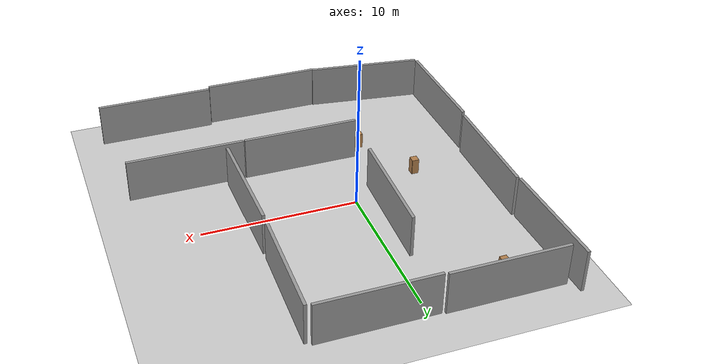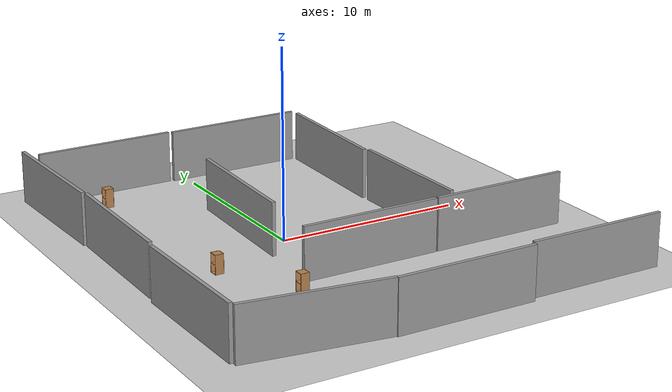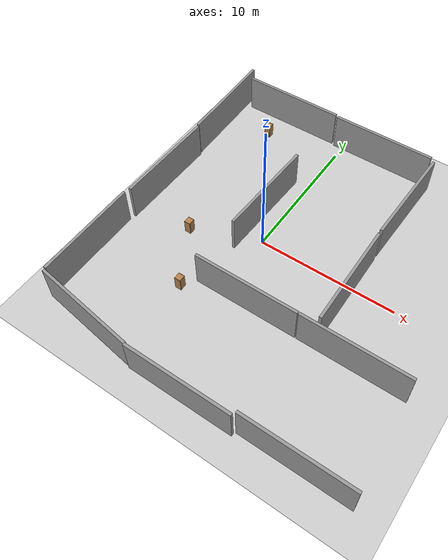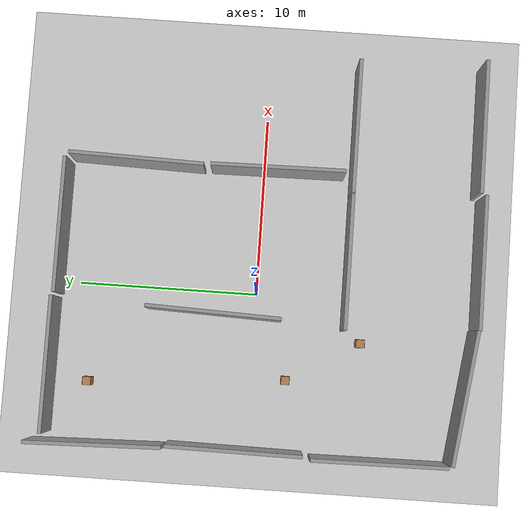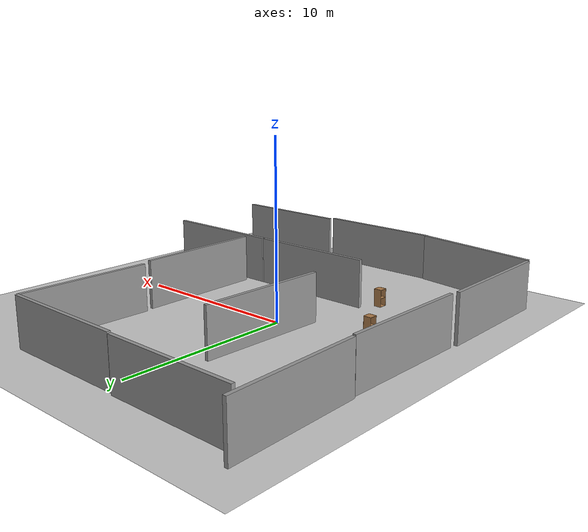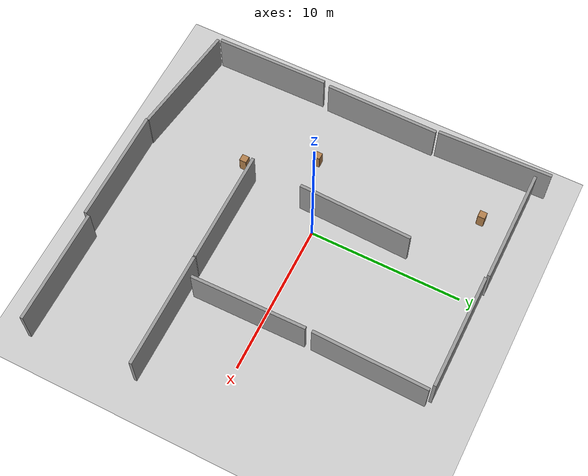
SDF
<sdf version="1.4">
 <world name="default">
  <light name="sun" type="directional">
   <pose>0 0 10 0 -0 0</pose>
   <diffuse>0.8 0.8 0.8 1</diffuse>
   <specular>0.2 0.2 0.2 1</specular>
   <attenuation>
    <range>1000</range>
    <constant>0.9</constant>
    <linear>0.01</linear>
    <quadratic>0.001</quadratic>
   </attenuation>
   <direction>-0.5 0.1 -0.9</direction>
  </light>
  <model name="ground_plane">
   <static>1</static>
   <link name="link">
    <collision name="collision">
     <geometry><plane><normal>0 0 1</normal><size>100 100</size></plane></geometry>
     <surface><friction><ode><mu>100</mu><mu2>50</mu2></ode></friction></surface>
    </collision>
    <visual name="visual">
     <cast_shadows>0</cast_shadows>
     <geometry><plane><normal>0 0 1</normal><size>100 100</size></plane></geometry>
     <material>
      <script><uri>file://media/materials/scripts/gazebo.material</uri><name>Gazebo/Grey</name></script>
     </material>
    </visual>
    <velocity_decay><linear>0</linear><angular>0</angular></velocity_decay>
   </link>
  </model>
  <physics type="ode">
   <max_step_size>0.001</max_step_size>
   <real_time_factor>1</real_time_factor>
   <real_time_update_rate>1000</real_time_update_rate>
   <gravity>0 0 -0.8</gravity>
  </physics>
  <scene><ambient>0.4 0.4 0.4 1</ambient><background>0.7 0.7 0.7 1</background><shadows>1</shadows></scene>
  <spherical_coordinates>
   <surface_model>EARTH_WGS84</surface_model>
   <latitude_deg>0</latitude_deg>
   <longitude_deg>0</longitude_deg>
   <elevation>0</elevation>
   <heading_deg>0</heading_deg>
  </spherical_coordinates>
  <model name="grey_wall">
   <static>1</static>
   <link name="link">
    <pose>0 0 1.4 0 -0 0</pose>
    <collision name="collision"><geometry><box><size>7.5 0.2 2.8</size></box></geometry></collision>
    <visual name="visual">
     <cast_shadows>0</cast_shadows>
     <geometry><box><size>7.5 0.2 2.8</size></box></geometry>
     <material>
      <script>
       <uri>model://grey_wall/materials/scripts</uri>
       <uri>model://grey_wall/materials/textures</uri>
       <name>vrc/grey_wall</name>
      </script>
     </material>
    </visual>
    <velocity_decay><linear>0</linear><angular>0</angular></velocity_decay>
   </link>
   <pose>-4.66921 11.1323 0 0 -0 0</pose>
  </model>
  <model name="grey_wall_0">
   <static>1</static>
   <link name="link">
    <pose>0 0 1.4 0 -0 0</pose>
    <collision name="collision"><geometry><box><size>7.5 0.2 2.8</size></box></geometry></collision>
    <visual name="visual">
     <cast_shadows>0</cast_shadows>
     <geometry><box><size>7.5 0.2 2.8</size></box></geometry>
     <material>
      <script>
       <uri>model://grey_wall/materials/scripts</uri>
       <uri>model://grey_wall/materials/textures</uri>
       <name>vrc/grey_wall</name>
      </script>
     </material>
    </visual>
    <velocity_decay><linear>0</linear><angular>0</angular></velocity_decay>
   </link>
   <pose>-8.82305 8.28524 0 0 -0 1.59678</pose>
  </model>
  <model name="grey_wall_1">
   <static>1</static>
   <link name="link">
    <pose>0 0 1.4 0 -0 0</pose>
    <collision name="collision"><geometry><box><size>7.5 0.2 2.8</size></box></geometry></collision>
    <visual name="visual">
     <cast_shadows>0</cast_shadows>
     <geometry><box><size>7.5 0.2 2.8</size></box></geometry>
     <material>
      <script>
       <uri>model://grey_wall/materials/scripts</uri>
       <uri>model://grey_wall/materials/textures</uri>
       <name>vrc/grey_wall</name>
      </script>
     </material>
    </visual>
    <velocity_decay><linear>0</linear><angular>0</angular></velocity_decay>
   </link>
   <pose>6.95709 7.1151 -0.09958 0 0 -1.59597</pose>
  </model>
  <model name="grey_wall_2">
   <static>1</static>
   <link name="link">
    <pose>0 0 1.4 0 -0 0</pose>
    <collision name="collision"><geometry><box><size>7.5 0.2 2.8</size></box></geometry></collision>
    <visual name="visual">
     <cast_shadows>0</cast_shadows>
     <geometry><box><size>7.5 0.2 2.8</size></box></geometry>
     <material>
      <script>
       <uri>model://grey_wall/materials/scripts</uri>
       <uri>model://grey_wall/materials/textures</uri>
       <name>vrc/grey_wall</name>
      </script>
     </material>
    </visual>
    <velocity_decay><linear>0</linear><angular>0</angular></velocity_decay>
   </link>
   <pose>-8.66798 0.643351 0 0 -0 1.55971</pose>
  </model>
  <model name="grey_wall_3">
   <static>1</static>
   <link name="link">
    <pose>0 0 1.4 0 -0 0</pose>
    <collision name="collision"><geometry><box><size>7.5 0.2 2.8</size></box></geometry></collision>
    <visual name="visual">
     <cast_shadows>0</cast_shadows>
     <geometry><box><size>7.5 0.2 2.8</size></box></geometry>
     <material>
      <script>
       <uri>model://grey_wall/materials/scripts</uri>
       <uri>model://grey_wall/materials/textures</uri>
       <name>vrc/grey_wall</name>
      </script>
     </material>
    </visual>
    <velocity_decay><linear>0</linear><angular>0</angular></velocity_decay>
   </link>
   <pose>3.0187 11.024 0 0 -0 0</pose>
  </model>
  <model name="grey_wall_4">
   <static>1</static>
   <link name="link">
    <pose>0 0 1.4 0 -0 0</pose>
    <collision name="collision"><geometry><box><size>7.5 0.2 2.8</size></box></geometry></collision>
    <visual name="visual">
     <cast_shadows>0</cast_shadows>
     <geometry><box><size>7.5 0.2 2.8</size></box></geometry>
     <material>
      <script>
       <uri>model://grey_wall/materials/scripts</uri>
       <uri>model://grey_wall/materials/textures</uri>
       <name>vrc/grey_wall</name>
      </script>
     </material>
    </visual>
    <velocity_decay><linear>0</linear><angular>0</angular></velocity_decay>
   </link>
   <pose>-5.00388 -11.7116 -0 0 0 -0.140181</pose>
  </model>
  <model name="grey_wall_5">
   <static>1</static>
   <link name="link">
    <pose>0 0 1.4 0 -0 0</pose>
    <collision name="collision"><geometry><box><size>7.5 0.2 2.8</size></box></geometry></collision>
    <visual name="visual">
     <cast_shadows>0</cast_shadows>
     <geometry><box><size>7.5 0.2 2.8</size></box></geometry>
     <material>
      <script>
       <uri>model://grey_wall/materials/scripts</uri>
       <uri>model://grey_wall/materials/textures</uri>
       <name>vrc/grey_wall</name>
      </script>
     </material>
    </visual>
    <velocity_decay><linear>0</linear><angular>0</angular></velocity_decay>
   </link>
   <pose>2.42293 -12.2938 0 0 -0 0</pose>
  </model>
  <model name="grey_wall_6">
   <static>1</static>
   <link name="link">
    <pose>0 0 1.4 0 -0 0</pose>
    <collision name="collision"><geometry><box><size>7.5 0.2 2.8</size></box></geometry></collision>
    <visual name="visual">
     <cast_shadows>0</cast_shadows>
     <geometry><box><size>7.5 0.2 2.8</size></box></geometry>
     <material>
      <script>
       <uri>model://grey_wall/materials/scripts</uri>
       <uri>model://grey_wall/materials/textures</uri>
       <name>vrc/grey_wall</name>
      </script>
     </material>
    </visual>
    <velocity_decay><linear>0</linear><angular>0</angular></velocity_decay>
   </link>
   <pose>6.93776 -0.771113 0 0 -0 1.58205</pose>
  </model>
  <model name="grey_wall_7">
   <static>1</static>
   <link name="link">
    <pose>0 0 1.4 0 -0 0</pose>
    <collision name="collision"><geometry><box><size>7.5 0.2 2.8</size></box></geometry></collision>
    <visual name="visual">
     <cast_shadows>0</cast_shadows>
     <geometry><box><size>7.5 0.2 2.8</size></box></geometry>
     <material>
      <script>
       <uri>model://grey_wall/materials/scripts</uri>
       <uri>model://grey_wall/materials/textures</uri>
       <name>vrc/grey_wall</name>
      </script>
     </material>
    </visual>
    <velocity_decay><linear>0</linear><angular>0</angular></velocity_decay>
   </link>
   <pose>-8.81028 -7.26542 0 0 0 -1.56133</pose>
  </model>
  <model name="grey_wall_8">
   <static>1</static>
   <link name="link">
    <pose>0 0 1.4 0 -0 0</pose>
    <collision name="collision"><geometry><box><size>7.5 0.2 2.8</size></box></geometry></collision>
    <visual name="visual">
     <cast_shadows>0</cast_shadows>
     <geometry><box><size>7.5 0.2 2.8</size></box></geometry>
     <material>
      <script>
       <uri>model://grey_wall/materials/scripts</uri>
       <uri>model://grey_wall/materials/textures</uri>
       <name>vrc/grey_wall</name>
      </script>
     </material>
    </visual>
    <velocity_decay><linear>0</linear><angular>0</angular></velocity_decay>
   </link>
   <pose>-1.25393 2.25555 0 0 -0 1.53671</pose>
  </model>
  <model name="grey_wall_9">
   <static>1</static>
   <link name="link">
    <pose>0 0 1.4 0 -0 0</pose>
    <collision name="collision"><geometry><box><size>7.5 0.2 2.8</size></box></geometry></collision>
    <visual name="visual">
     <cast_shadows>0</cast_shadows>
     <geometry><box><size>7.5 0.2 2.8</size></box></geometry>
     <material>
      <script>
       <uri>model://grey_wall/materials/scripts</uri>
       <uri>model://grey_wall/materials/textures</uri>
       <name>vrc/grey_wall</name>
      </script>
     </material>
    </visual>
    <velocity_decay><linear>0</linear><angular>0</angular></velocity_decay>
   </link>
   <pose>1.98711 -4.97386 0 0 -0 0</pose>
  </model>
  <model name="grey_wall_10">
   <static>1</static>
   <link name="link">
    <pose>0 0 1.4 0 -0 0</pose>
    <collision name="collision"><geometry><box><size>7.5 0.2 2.8</size></box></geometry></collision>
    <visual name="visual">
     <cast_shadows>0</cast_shadows>
     <geometry><box><size>7.5 0.2 2.8</size></box></geometry>
     <material>
      <script>
       <uri>model://grey_wall/materials/scripts</uri>
       <uri>model://grey_wall/materials/textures</uri>
       <name>vrc/grey_wall</name>
      </script>
     </material>
    </visual>
    <velocity_decay><linear>0</linear><angular>0</angular></velocity_decay>
   </link>
   <pose>9.5672 -4.9687 0 0 -0 0</pose>
  </model>
  <model name="cabinet">
   <static>1</static>
   <link name="cabinet_bottom_plate">
    <inertial>
     <pose>0 0 -1 0 -0 0</pose>
     <inertia><ixx>2.05</ixx><ixy>0</ixy><ixz>0</ixz><iyy>2.05</iyy><iyz>0</iyz><izz>2.05</izz></inertia>
     <mass>25</mass>
    </inertial>
    <collision name="cabinet_bottom_plate_geom">
     <pose>0 0 0.01 0 -0 0</pose>
     <geometry><box><size>0.45 0.45 0.02</size></box></geometry>
    </collision>
    <visual name="cabinet_bottom_plate_geom_visual">
     <pose>0 0 0.01 0 -0 0</pose>
     <geometry><box><size>0.45 0.45 0.02</size></box></geometry>
     <material>
      <script><uri>file://media/materials/scripts/gazebo.material</uri><name>Gazebo/Wood</name></script>
     </material>
    </visual>
    <collision name="cabinet_bottom_plate_geom_cabinet_back_plate">
     <pose>0.235 0 0.51 0 -0 0</pose>
     <geometry><box><size>0.02 0.45 1.02</size></box></geometry>
    </collision>
    <visual name="cabinet_bottom_plate_geom_cabinet_back_plate_visual">
     <pose>0.235 0 0.51 0 -0 0</pose>
     <geometry><box><size>0.02 0.45 1.02</size></box></geometry>
     <material>
      <script><uri>file://media/materials/scripts/gazebo.material</uri><name>Gazebo/Wood</name></script>
     </material>
    </visual>
    <collision name="cabinet_bottom_plate_geom_cabinet_left_plate">
     <pose>0 0.235 0.51 0 -0 0</pose>
     <geometry><box><size>0.45 0.02 1.02</size></box></geometry>
    </collision>
    <visual name="cabinet_bottom_plate_geom_cabinet_left_plate_visual">
     <pose>0 0.235 0.51 0 -0 0</pose>
     <geometry><box><size>0.45 0.02 1.02</size></box></geometry>
     <material>
      <script><uri>file://media/materials/scripts/gazebo.material</uri><name>Gazebo/Wood</name></script>
     </material>
    </visual>
    <collision name="cabinet_bottom_plate_geom_cabinet_middle_plate">
     <pose>0 0 0.51 0 -0 0</pose>
     <geometry><box><size>0.45 0.45 0.02</size></box></geometry>
    </collision>
    <visual name="cabinet_bottom_plate_geom_cabinet_middle_plate_visual">
     <pose>0 0 0.51 0 -0 0</pose>
     <geometry><box><size>0.45 0.45 0.02</size></box></geometry>
     <material>
      <script><uri>file://media/materials/scripts/gazebo.material</uri><name>Gazebo/Wood</name></script>
     </material>
    </visual>
    <collision name="cabinet_bottom_plate_geom_cabinet_right_plate">
     <pose>0 -0.235 0.51 0 -0 0</pose>
     <geometry><box><size>0.45 0.02 1.02</size></box></geometry>
    </collision>
    <visual name="cabinet_bottom_plate_geom_cabinet_right_plate_visual">
     <pose>0 -0.235 0.51 0 -0 0</pose>
     <geometry><box><size>0.45 0.02 1.02</size></box></geometry>
     <material>
      <script><uri>file://media/materials/scripts/gazebo.material</uri><name>Gazebo/Wood</name></script>
     </material>
    </visual>
    <collision name="cabinet_bottom_plate_geom_cabinet_top_plate">
     <pose>0 0 1.01 0 -0 0</pose>
     <geometry><box><size>0.45 0.45 0.02</size></box></geometry>
    </collision>
    <visual name="cabinet_bottom_plate_geom_cabinet_top_plate_visual">
     <pose>0 0 1.01 0 -0 0</pose>
     <geometry><box><size>0.45 0.45 0.02</size></box></geometry>
     <material>
      <script><uri>file://media/materials/scripts/gazebo.material</uri><name>Gazebo/Wood</name></script>
     </material>
    </visual>
    <velocity_decay><linear>0</linear><angular>0</angular></velocity_decay>
   </link>
   <pose>-5.4935 9.10529 0 0 -0 0</pose>
  </model>
  <model name="cabinet_0">
   <static>1</static>
   <link name="cabinet_bottom_plate">
    <inertial>
     <pose>0 0 -1 0 -0 0</pose>
     <inertia><ixx>2.05</ixx><ixy>0</ixy><ixz>0</ixz><iyy>2.05</iyy><iyz>0</iyz><izz>2.05</izz></inertia>
     <mass>25</mass>
    </inertial>
    <collision name="cabinet_bottom_plate_geom">
     <pose>0 0 0.01 0 -0 0</pose>
     <geometry><box><size>0.45 0.45 0.02</size></box></geometry>
    </collision>
    <visual name="cabinet_bottom_plate_geom_visual">
     <pose>0 0 0.01 0 -0 0</pose>
     <geometry><box><size>0.45 0.45 0.02</size></box></geometry>
     <material>
      <script><uri>file://media/materials/scripts/gazebo.material</uri><name>Gazebo/Wood</name></script>
     </material>
    </visual>
    <collision name="cabinet_bottom_plate_geom_cabinet_back_plate">
     <pose>0.235 0 0.51 0 -0 0</pose>
     <geometry><box><size>0.02 0.45 1.02</size></box></geometry>
    </collision>
    <visual name="cabinet_bottom_plate_geom_cabinet_back_plate_visual">
     <pose>0.235 0 0.51 0 -0 0</pose>
     <geometry><box><size>0.02 0.45 1.02</size></box></geometry>
     <material>
      <script><uri>file://media/materials/scripts/gazebo.material</uri><name>Gazebo/Wood</name></script>
     </material>
    </visual>
    <collision name="cabinet_bottom_plate_geom_cabinet_left_plate">
     <pose>0 0.235 0.51 0 -0 0</pose>
     <geometry><box><size>0.45 0.02 1.02</size></box></geometry>
    </collision>
    <visual name="cabinet_bottom_plate_geom_cabinet_left_plate_visual">
     <pose>0 0.235 0.51 0 -0 0</pose>
     <geometry><box><size>0.45 0.02 1.02</size></box></geometry>
     <material>
      <script><uri>file://media/materials/scripts/gazebo.material</uri><name>Gazebo/Wood</name></script>
     </material>
    </visual>
    <collision name="cabinet_bottom_plate_geom_cabinet_middle_plate">
     <pose>0 0 0.51 0 -0 0</pose>
     <geometry><box><size>0.45 0.45 0.02</size></box></geometry>
    </collision>
    <visual name="cabinet_bottom_plate_geom_cabinet_middle_plate_visual">
     <pose>0 0 0.51 0 -0 0</pose>
     <geometry><box><size>0.45 0.45 0.02</size></box></geometry>
     <material>
      <script><uri>file://media/materials/scripts/gazebo.material</uri><name>Gazebo/Wood</name></script>
     </material>
    </visual>
    <collision name="cabinet_bottom_plate_geom_cabinet_right_plate">
     <pose>0 -0.235 0.51 0 -0 0</pose>
     <geometry><box><size>0.45 0.02 1.02</size></box></geometry>
    </collision>
    <visual name="cabinet_bottom_plate_geom_cabinet_right_plate_visual">
     <pose>0 -0.235 0.51 0 -0 0</pose>
     <geometry><box><size>0.45 0.02 1.02</size></box></geometry>
     <material>
      <script><uri>file://media/materials/scripts/gazebo.material</uri><name>Gazebo/Wood</name></script>
     </material>
    </visual>
    <collision name="cabinet_bottom_plate_geom_cabinet_top_plate">
     <pose>0 0 1.01 0 -0 0</pose>
     <geometry><box><size>0.45 0.45 0.02</size></box></geometry>
    </collision>
    <visual name="cabinet_bottom_plate_geom_cabinet_top_plate_visual">
     <pose>0 0 1.01 0 -0 0</pose>
     <geometry><box><size>0.45 0.45 0.02</size></box></geometry>
     <material>
      <script><uri>file://media/materials/scripts/gazebo.material</uri><name>Gazebo/Wood</name></script>
     </material>
    </visual>
    <velocity_decay><linear>0</linear><angular>0</angular></velocity_decay>
   </link>
   <pose>-4.73516 -1.93792 0 0 -0 0</pose>
  </model>
  <model name="cabinet_1">
   <static>1</static>
   <link name="cabinet_bottom_plate">
    <inertial>
     <pose>0 0 -1 0 -0 0</pose>
     <inertia><ixx>2.05</ixx><ixy>0</ixy><ixz>0</ixz><iyy>2.05</iyy><iyz>0</iyz><izz>2.05</izz></inertia>
     <mass>25</mass>
    </inertial>
    <collision name="cabinet_bottom_plate_geom">
     <pose>0 0 0.01 0 -0 0</pose>
     <geometry><box><size>0.45 0.45 0.02</size></box></geometry>
    </collision>
    <visual name="cabinet_bottom_plate_geom_visual">
     <pose>0 0 0.01 0 -0 0</pose>
     <geometry><box><size>0.45 0.45 0.02</size></box></geometry>
     <material>
      <script><uri>file://media/materials/scripts/gazebo.material</uri><name>Gazebo/Wood</name></script>
     </material>
    </visual>
    <collision name="cabinet_bottom_plate_geom_cabinet_back_plate">
     <pose>0.235 0 0.51 0 -0 0</pose>
     <geometry><box><size>0.02 0.45 1.02</size></box></geometry>
    </collision>
    <visual name="cabinet_bottom_plate_geom_cabinet_back_plate_visual">
     <pose>0.235 0 0.51 0 -0 0</pose>
     <geometry><box><size>0.02 0.45 1.02</size></box></geometry>
     <material>
      <script><uri>file://media/materials/scripts/gazebo.material</uri><name>Gazebo/Wood</name></script>
     </material>
    </visual>
    <collision name="cabinet_bottom_plate_geom_cabinet_left_plate">
     <pose>0 0.235 0.51 0 -0 0</pose>
     <geometry><box><size>0.45 0.02 1.02</size></box></geometry>
    </collision>
    <visual name="cabinet_bottom_plate_geom_cabinet_left_plate_visual">
     <pose>0 0.235 0.51 0 -0 0</pose>
     <geometry><box><size>0.45 0.02 1.02</size></box></geometry>
     <material>
      <script><uri>file://media/materials/scripts/gazebo.material</uri><name>Gazebo/Wood</name></script>
     </material>
    </visual>
    <collision name="cabinet_bottom_plate_geom_cabinet_middle_plate">
     <pose>0 0 0.51 0 -0 0</pose>
     <geometry><box><size>0.45 0.45 0.02</size></box></geometry>
    </collision>
    <visual name="cabinet_bottom_plate_geom_cabinet_middle_plate_visual">
     <pose>0 0 0.51 0 -0 0</pose>
     <geometry><box><size>0.45 0.45 0.02</size></box></geometry>
     <material>
      <script><uri>file://media/materials/scripts/gazebo.material</uri><name>Gazebo/Wood</name></script>
     </material>
    </visual>
    <collision name="cabinet_bottom_plate_geom_cabinet_right_plate">
     <pose>0 -0.235 0.51 0 -0 0</pose>
     <geometry><box><size>0.45 0.02 1.02</size></box></geometry>
    </collision>
    <visual name="cabinet_bottom_plate_geom_cabinet_right_plate_visual">
     <pose>0 -0.235 0.51 0 -0 0</pose>
     <geometry><box><size>0.45 0.02 1.02</size></box></geometry>
     <material>
      <script><uri>file://media/materials/scripts/gazebo.material</uri><name>Gazebo/Wood</name></script>
     </material>
    </visual>
    <collision name="cabinet_bottom_plate_geom_cabinet_top_plate">
     <pose>0 0 1.01 0 -0 0</pose>
     <geometry><box><size>0.45 0.45 0.02</size></box></geometry>
    </collision>
    <visual name="cabinet_bottom_plate_geom_cabinet_top_plate_visual">
     <pose>0 0 1.01 0 -0 0</pose>
     <geometry><box><size>0.45 0.45 0.02</size></box></geometry>
     <material>
      <script><uri>file://media/materials/scripts/gazebo.material</uri><name>Gazebo/Wood</name></script>
     </material>
    </visual>
    <velocity_decay><linear>0</linear><angular>0</angular></velocity_decay>
   </link>
   <pose>-2.40576 -6 0 0 -0 0</pose>
  </model>
  <model name="grey_wall_11">
   <static>1</static>
   <link name="link">
    <pose>0 0 1.4 0 -0 0</pose>
    <collision name="collision"><geometry><box><size>7.5 0.2 2.8</size></box></geometry></collision>
    <visual name="visual">
     <cast_shadows>0</cast_shadows>
     <geometry><box><size>7.5 0.2 2.8</size></box></geometry>
     <material>
      <script>
       <uri>model://grey_wall/materials/scripts</uri>
       <uri>model://grey_wall/materials/textures</uri>
       <name>vrc/grey_wall</name>
      </script>
     </material>
    </visual>
    <velocity_decay><linear>0</linear><angular>0</angular></velocity_decay>
   </link>
   <pose>10 -12 0 0 -0 0</pose>
  </model>
 </world>
</sdf>
